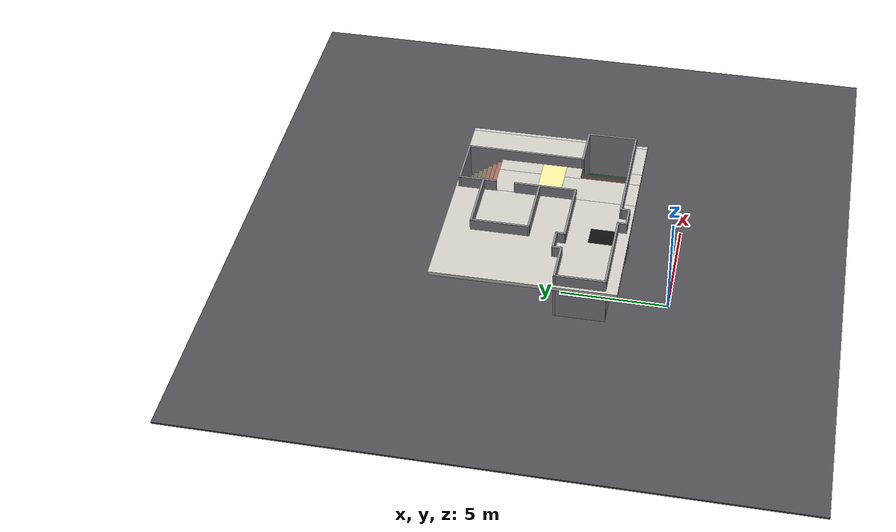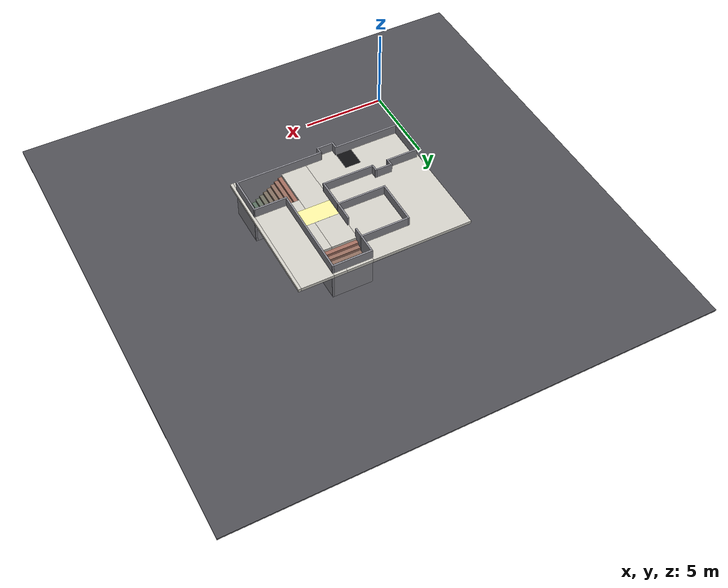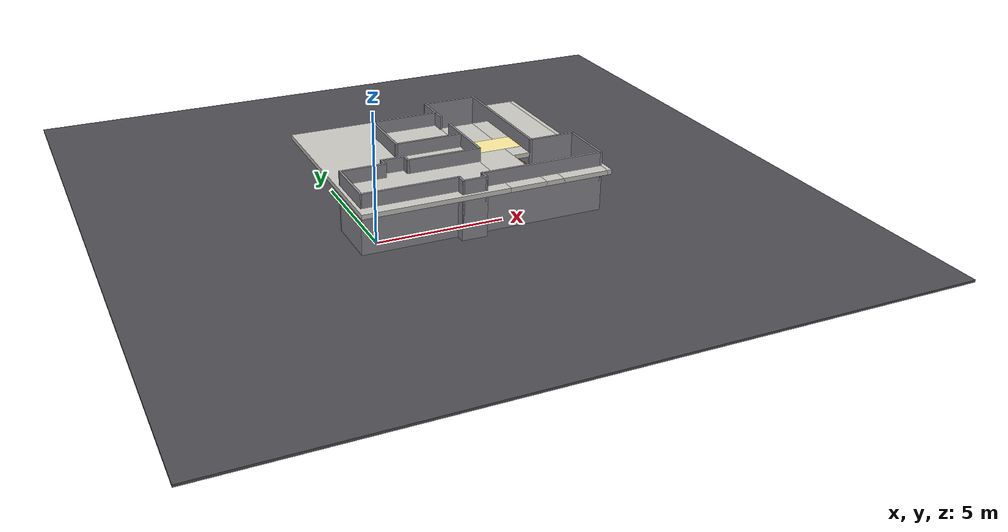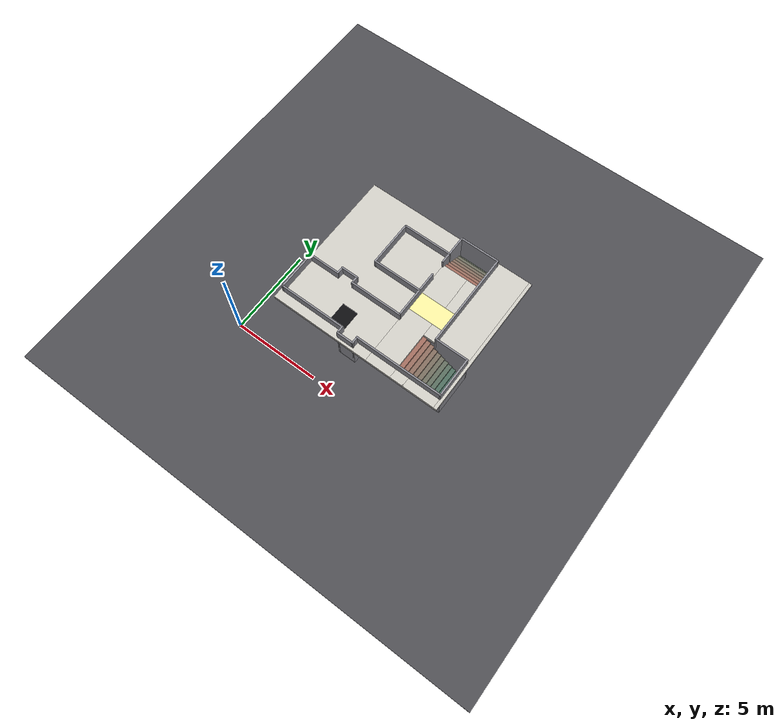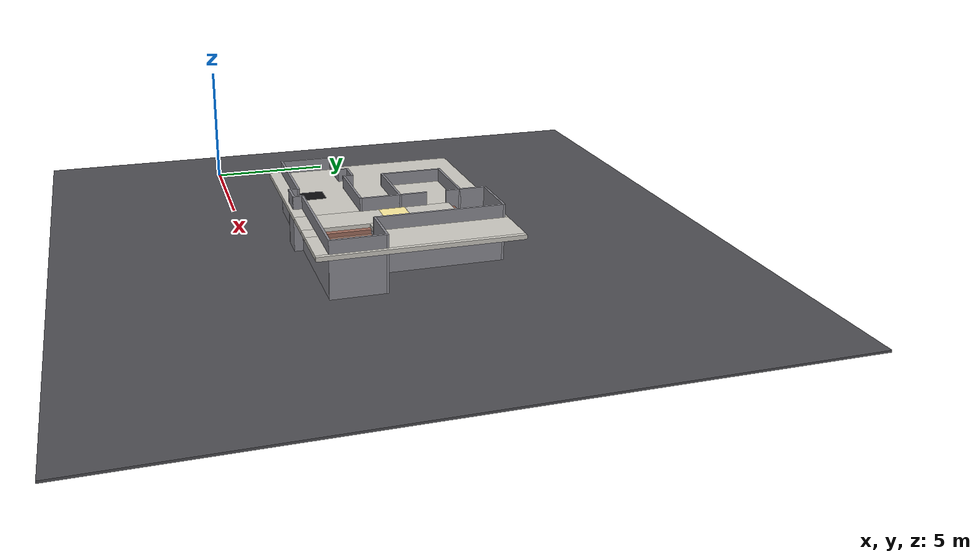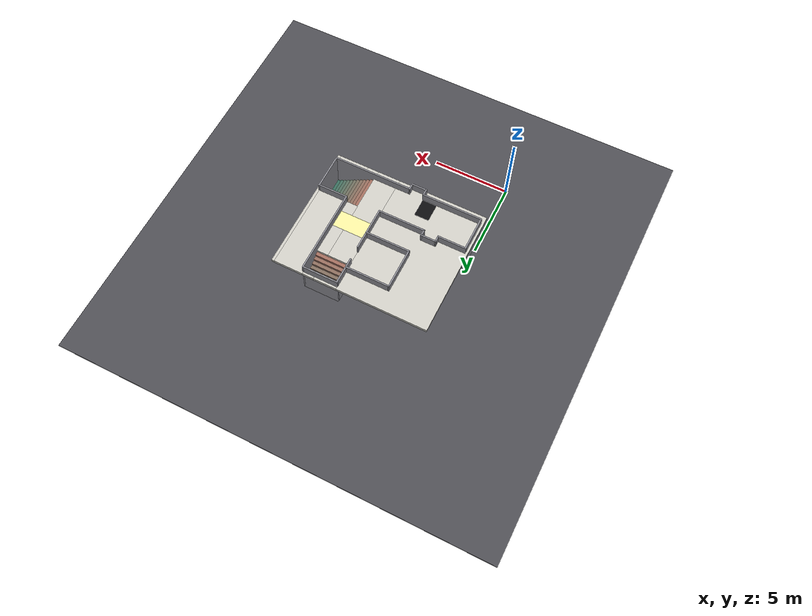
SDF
<?xml version="1.0"?>
<sdf version="1.6">
<world name="city_hall">
  <physics type="ode"><max_step_size>0.002</max_step_size><real_time_update_rate>500</real_time_update_rate>
    <real_time_factor>1</real_time_factor></physics>
  <scene><ambient>0.45 0.45 0.45 1</ambient><background>0.75 0.78 0.82 1</background><shadows>false</shadows></scene>
  <gui><camera name="user_camera"><pose>5.75 0.8 13.5 0 1.12 1.5708</pose></camera></gui>
  <light name="sun" type="directional"><cast_shadows>false</cast_shadows><pose>0 0 20 0 0 0</pose>
    <diffuse>0.85 0.85 0.85 1</diffuse><specular>0.1 0.1 0.1 1</specular><direction>-0.3 0.2 -1</direction></light>
  <model name="lower_floor"><static>true</static><pose>5.75 6.9 -2.05 0 0 0</pose>
    <link name="l"><collision name="c"><geometry><box><size>30 30 0.1</size></box></geometry></collision>
      <visual name="v"><geometry><box><size>30 30 0.1</size></box></geometry>
        <material><ambient>0.3 0.3 0.32 1</ambient><diffuse>0.3 0.3 0.32 1</diffuse></material></visual></link></model>
  <model name="city_hall"><static>true</static><link name="wall0"><pose>0.5000 4.2000 -0.7000 0 0 -1.57080</pose><collision name="c"><geometry><box><size>2.5000 0.1000 2.6000</size></box></geometry></collision><visual name="v"><geometry><box><size>2.5000 0.1000 2.6000</size></box></geometry><material><ambient>0.55 0.55 0.58 1</ambient><diffuse>0.55 0.55 0.58 1</diffuse><specular>0.05 0.05 0.05 1</specular></material></visual></link><link name="wall1"><pose>2.5500 3.0000 -0.7000 0 0 0.00000</pose><collision name="c"><geometry><box><size>4.2000 0.1000 2.6000</size></box></geometry></collision><visual name="v"><geometry><box><size>4.2000 0.1000 2.6000</size></box></geometry><material><ambient>0.55 0.55 0.58 1</ambient><diffuse>0.55 0.55 0.58 1</diffuse><specular>0.05 0.05 0.05 1</specular></material></visual></link><link name="wall2"><pose>4.6000 2.8000 -0.7000 0 0 -1.57080</pose><collision name="c"><geometry><box><size>0.5000 0.1000 2.6000</size></box></geometry></collision><visual name="v"><geometry><box><size>0.5000 0.1000 2.6000</size></box></geometry><material><ambient>0.55 0.55 0.58 1</ambient><diffuse>0.55 0.55 0.58 1</diffuse><specular>0.05 0.05 0.05 1</specular></material></visual></link><link name="wall3"><pose>5.1000 2.6000 -0.7000 0 0 0.00000</pose><collision name="c"><geometry><box><size>1.1000 0.1000 2.6000</size></box></geometry></collision><visual name="v"><geometry><box><size>1.1000 0.1000 2.6000</size></box></geometry><material><ambient>0.55 0.55 0.58 1</ambient><diffuse>0.55 0.55 0.58 1</diffuse><specular>0.05 0.05 0.05 1</specular></material></visual></link><link name="wall4"><pose>5.6000 2.8000 -0.7000 0 0 1.57080</pose><collision name="c"><geometry><box><size>0.5000 0.1000 2.6000</size></box></geometry></collision><visual name="v"><geometry><box><size>0.5000 0.1000 2.6000</size></box></geometry><material><ambient>0.55 0.55 0.58 1</ambient><diffuse>0.55 0.55 0.58 1</diffuse><specular>0.05 0.05 0.05 1</specular></material></visual></link><link name="wall5"><pose>8.3000 3.0000 -0.7000 0 0 0.00000</pose><collision name="c"><geometry><box><size>5.5000 0.1000 2.6000</size></box></geometry></collision><visual name="v"><geometry><box><size>5.5000 0.1000 2.6000</size></box></geometry><material><ambient>0.55 0.55 0.58 1</ambient><diffuse>0.55 0.55 0.58 1</diffuse><specular>0.05 0.05 0.05 1</specular></material></visual></link><link name="wall6"><pose>11.0000 4.2000 -0.7000 0 0 1.57080</pose><collision name="c"><geometry><box><size>2.5000 0.1000 2.6000</size></box></geometry></collision><visual name="v"><geometry><box><size>2.5000 0.1000 2.6000</size></box></geometry><material><ambient>0.55 0.55 0.58 1</ambient><diffuse>0.55 0.55 0.58 1</diffuse><specular>0.05 0.05 0.05 1</specular></material></visual></link><link name="wall7"><pose>10.0000 5.4000 -0.7000 0 0 3.14159</pose><collision name="c"><geometry><box><size>2.1000 0.1000 2.6000</size></box></geometry></collision><visual name="v"><geometry><box><size>2.1000 0.1000 2.6000</size></box></geometry><material><ambient>0.55 0.55 0.58 1</ambient><diffuse>0.55 0.55 0.58 1</diffuse><specular>0.05 0.05 0.05 1</specular></material></visual></link><link name="wall8"><pose>9.0000 8.3000 -0.7000 0 0 1.57080</pose><collision name="c"><geometry><box><size>5.9000 0.1000 2.6000</size></box></geometry></collision><visual name="v"><geometry><box><size>5.9000 0.1000 2.6000</size></box></geometry><material><ambient>0.55 0.55 0.58 1</ambient><diffuse>0.55 0.55 0.58 1</diffuse><specular>0.05 0.05 0.05 1</specular></material></visual></link><link name="wall9"><pose>7.8000 11.2000 -0.7000 0 0 3.14159</pose><collision name="c"><geometry><box><size>2.5000 0.1000 2.6000</size></box></geometry></collision><visual name="v"><geometry><box><size>2.5000 0.1000 2.6000</size></box></geometry><material><ambient>0.55 0.55 0.58 1</ambient><diffuse>0.55 0.55 0.58 1</diffuse><specular>0.05 0.05 0.05 1</specular></material></visual></link><link name="wall10"><pose>6.6000 10.3000 -0.7000 0 0 -1.57080</pose><collision name="c"><geometry><box><size>1.9000 0.1000 2.6000</size></box></geometry></collision><visual name="v"><geometry><box><size>1.9000 0.1000 2.6000</size></box></geometry><material><ambient>0.55 0.55 0.58 1</ambient><diffuse>0.55 0.55 0.58 1</diffuse><specular>0.05 0.05 0.05 1</specular></material></visual></link><link name="wall11"><pose>6.6000 6.9000 -0.7000 0 0 -1.57080</pose><collision name="c"><geometry><box><size>3.1000 0.1000 2.6000</size></box></geometry></collision><visual name="v"><geometry><box><size>3.1000 0.1000 2.6000</size></box></geometry><material><ambient>0.55 0.55 0.58 1</ambient><diffuse>0.55 0.55 0.58 1</diffuse><specular>0.05 0.05 0.05 1</specular></material></visual></link><link name="wall12"><pose>5.0000 5.4000 -0.7000 0 0 3.14159</pose><collision name="c"><geometry><box><size>3.3000 0.1000 2.6000</size></box></geometry></collision><visual name="v"><geometry><box><size>3.3000 0.1000 2.6000</size></box></geometry><material><ambient>0.55 0.55 0.58 1</ambient><diffuse>0.55 0.55 0.58 1</diffuse><specular>0.05 0.05 0.05 1</specular></material></visual></link><link name="wall13"><pose>3.4000 5.6000 -0.7000 0 0 1.57080</pose><collision name="c"><geometry><box><size>0.5000 0.1000 2.6000</size></box></geometry></collision><visual name="v"><geometry><box><size>0.5000 0.1000 2.6000</size></box></geometry><material><ambient>0.55 0.55 0.58 1</ambient><diffuse>0.55 0.55 0.58 1</diffuse><specular>0.05 0.05 0.05 1</specular></material></visual></link><link name="wall14"><pose>2.9000 5.8000 -0.7000 0 0 3.14159</pose><collision name="c"><geometry><box><size>1.1000 0.1000 2.6000</size></box></geometry></collision><visual name="v"><geometry><box><size>1.1000 0.1000 2.6000</size></box></geometry><material><ambient>0.55 0.55 0.58 1</ambient><diffuse>0.55 0.55 0.58 1</diffuse><specular>0.05 0.05 0.05 1</specular></material></visual></link><link name="wall15"><pose>2.4000 5.6000 -0.7000 0 0 -1.57080</pose><collision name="c"><geometry><box><size>0.5000 0.1000 2.6000</size></box></geometry></collision><visual name="v"><geometry><box><size>0.5000 0.1000 2.6000</size></box></geometry><material><ambient>0.55 0.55 0.58 1</ambient><diffuse>0.55 0.55 0.58 1</diffuse><specular>0.05 0.05 0.05 1</specular></material></visual></link><link name="wall16"><pose>1.4500 5.4000 -0.7000 0 0 3.14159</pose><collision name="c"><geometry><box><size>2.0000 0.1000 2.6000</size></box></geometry></collision><visual name="v"><geometry><box><size>2.0000 0.1000 2.6000</size></box></geometry><material><ambient>0.55 0.55 0.58 1</ambient><diffuse>0.55 0.55 0.58 1</diffuse><specular>0.05 0.05 0.05 1</specular></material></visual></link><link name="wall17"><pose>5.1000 7.2000 -0.7000 0 0 3.14159</pose><collision name="c"><geometry><box><size>3.1000 0.1000 2.6000</size></box></geometry></collision><visual name="v"><geometry><box><size>3.1000 0.1000 2.6000</size></box></geometry><material><ambient>0.55 0.55 0.58 1</ambient><diffuse>0.55 0.55 0.58 1</diffuse><specular>0.05 0.05 0.05 1</specular></material></visual></link><link name="wall18"><pose>3.6000 8.6000 -0.7000 0 0 1.57080</pose><collision name="c"><geometry><box><size>2.9000 0.1000 2.6000</size></box></geometry></collision><visual name="v"><geometry><box><size>2.9000 0.1000 2.6000</size></box></geometry><material><ambient>0.55 0.55 0.58 1</ambient><diffuse>0.55 0.55 0.58 1</diffuse><specular>0.05 0.05 0.05 1</specular></material></visual></link><link name="wall19"><pose>5.1000 10.0000 -0.7000 0 0 0.00000</pose><collision name="c"><geometry><box><size>3.1000 0.1000 2.6000</size></box></geometry></collision><visual name="v"><geometry><box><size>3.1000 0.1000 2.6000</size></box></geometry><material><ambient>0.55 0.55 0.58 1</ambient><diffuse>0.55 0.55 0.58 1</diffuse><specular>0.05 0.05 0.05 1</specular></material></visual></link><link name="slab0"><pose>3.4500 6.9000 -0.1000 0 0 0.00000</pose><collision name="c"><geometry><box><size>6.3000 9.0000 0.2000</size></box></geometry></collision><visual name="v"><geometry><box><size>6.3000 9.0000 0.2000</size></box></geometry><material><ambient>0.8 0.79 0.76 1</ambient><diffuse>0.8 0.79 0.76 1</diffuse><specular>0.05 0.05 0.05 1</specular></material></visual></link><link name="slab1"><pose>7.3900 5.9500 -0.1000 0 0 0.00000</pose><collision name="c"><geometry><box><size>1.6200 7.1000 0.2000</size></box></geometry></collision><visual name="v"><geometry><box><size>1.6200 7.1000 0.2000</size></box></geometry><material><ambient>0.8 0.79 0.76 1</ambient><diffuse>0.8 0.79 0.76 1</diffuse><specular>0.05 0.05 0.05 1</specular></material></visual></link><link name="slab2"><pose>7.4000 11.3000 -0.1000 0 0 0.00000</pose><collision name="c"><geometry><box><size>1.6400 0.2000 0.2000</size></box></geometry></collision><visual name="v"><geometry><box><size>1.6400 0.2000 0.2000</size></box></geometry><material><ambient>0.8 0.79 0.76 1</ambient><diffuse>0.8 0.79 0.76 1</diffuse><specular>0.05 0.05 0.05 1</specular></material></visual></link><link name="slab3"><pose>8.6000 2.7000 -0.1000 0 0 0.00000</pose><collision name="c"><geometry><box><size>0.8400 0.6000 0.2000</size></box></geometry></collision><visual name="v"><geometry><box><size>0.8400 0.6000 0.2000</size></box></geometry><material><ambient>0.8 0.79 0.76 1</ambient><diffuse>0.8 0.79 0.76 1</diffuse><specular>0.05 0.05 0.05 1</specular></material></visual></link><link name="slab4"><pose>8.6000 7.4500 -0.1000 0 0 0.00000</pose><collision name="c"><geometry><box><size>0.8400 4.1000 0.2000</size></box></geometry></collision><visual name="v"><geometry><box><size>0.8400 4.1000 0.2000</size></box></geometry><material><ambient>0.8 0.79 0.76 1</ambient><diffuse>0.8 0.79 0.76 1</diffuse><specular>0.05 0.05 0.05 1</specular></material></visual></link><link name="slab5"><pose>8.6000 11.3000 -0.1000 0 0 0.00000</pose><collision name="c"><geometry><box><size>0.8400 0.2000 0.2000</size></box></geometry></collision><visual name="v"><geometry><box><size>0.8400 0.2000 0.2000</size></box></geometry><material><ambient>0.8 0.79 0.76 1</ambient><diffuse>0.8 0.79 0.76 1</diffuse><specular>0.05 0.05 0.05 1</specular></material></visual></link><link name="slab6"><pose>10.0000 2.7000 -0.1000 0 0 0.00000</pose><collision name="c"><geometry><box><size>2.0400 0.6000 0.2000</size></box></geometry></collision><visual name="v"><geometry><box><size>2.0400 0.6000 0.2000</size></box></geometry><material><ambient>0.8 0.79 0.76 1</ambient><diffuse>0.8 0.79 0.76 1</diffuse><specular>0.05 0.05 0.05 1</specular></material></visual></link><link name="slab7"><pose>10.0100 8.4000 -0.1000 0 0 0.00000</pose><collision name="c"><geometry><box><size>2.0200 6.0000 0.2000</size></box></geometry></collision><visual name="v"><geometry><box><size>2.0200 6.0000 0.2000</size></box></geometry><material><ambient>0.8 0.79 0.76 1</ambient><diffuse>0.8 0.79 0.76 1</diffuse><specular>0.05 0.05 0.05 1</specular></material></visual></link><link name="slab8"><pose>11.1000 6.9000 -0.1000 0 0 0.00000</pose><collision name="c"><geometry><box><size>0.2000 9.0000 0.2000</size></box></geometry></collision><visual name="v"><geometry><box><size>0.2000 9.0000 0.2000</size></box></geometry><material><ambient>0.8 0.79 0.76 1</ambient><diffuse>0.8 0.79 0.76 1</diffuse><specular>0.05 0.05 0.05 1</specular></material></visual></link><link name="stairA0"><pose>8.3250 4.2000 -1.0900 0 0 0.00000</pose><collision name="c"><geometry><box><size>0.2500 2.4000 1.8200</size></box></geometry></collision><visual name="v"><geometry><box><size>0.2500 2.4000 1.8200</size></box></geometry><material><ambient>0.62 0.42 0.36 1</ambient><diffuse>0.62 0.42 0.36 1</diffuse><specular>0.05 0.05 0.05 1</specular></material></visual></link><link name="stairA1"><pose>8.5750 4.2000 -1.1800 0 0 0.00000</pose><collision name="c"><geometry><box><size>0.2500 2.4000 1.6400</size></box></geometry></collision><visual name="v"><geometry><box><size>0.2500 2.4000 1.6400</size></box></geometry><material><ambient>0.58 0.42 0.36 1</ambient><diffuse>0.58 0.42 0.36 1</diffuse><specular>0.05 0.05 0.05 1</specular></material></visual></link><link name="stairA2"><pose>8.8250 4.2000 -1.2700 0 0 0.00000</pose><collision name="c"><geometry><box><size>0.2500 2.4000 1.4600</size></box></geometry></collision><visual name="v"><geometry><box><size>0.2500 2.4000 1.4600</size></box></geometry><material><ambient>0.54 0.42 0.36 1</ambient><diffuse>0.54 0.42 0.36 1</diffuse><specular>0.05 0.05 0.05 1</specular></material></visual></link><link name="stairA3"><pose>9.0750 4.2000 -1.3600 0 0 0.00000</pose><collision name="c"><geometry><box><size>0.2500 2.4000 1.2800</size></box></geometry></collision><visual name="v"><geometry><box><size>0.2500 2.4000 1.2800</size></box></geometry><material><ambient>0.5 0.42 0.36 1</ambient><diffuse>0.5 0.42 0.36 1</diffuse><specular>0.05 0.05 0.05 1</specular></material></visual></link><link name="stairA4"><pose>9.3250 4.2000 -1.4500 0 0 0.00000</pose><collision name="c"><geometry><box><size>0.2500 2.4000 1.1000</size></box></geometry></collision><visual name="v"><geometry><box><size>0.2500 2.4000 1.1000</size></box></geometry><material><ambient>0.45999999999999996 0.42 0.36 1</ambient><diffuse>0.45999999999999996 0.42 0.36 1</diffuse><specular>0.05 0.05 0.05 1</specular></material></visual></link><link name="stairA5"><pose>9.5750 4.2000 -1.5400 0 0 0.00000</pose><collision name="c"><geometry><box><size>0.2500 2.4000 0.9200</size></box></geometry></collision><visual name="v"><geometry><box><size>0.2500 2.4000 0.9200</size></box></geometry><material><ambient>0.42 0.42 0.36 1</ambient><diffuse>0.42 0.42 0.36 1</diffuse><specular>0.05 0.05 0.05 1</specular></material></visual></link><link name="stairA6"><pose>9.8250 4.2000 -1.6300 0 0 0.00000</pose><collision name="c"><geometry><box><size>0.2500 2.4000 0.7400</size></box></geometry></collision><visual name="v"><geometry><box><size>0.2500 2.4000 0.7400</size></box></geometry><material><ambient>0.38 0.42 0.36 1</ambient><diffuse>0.38 0.42 0.36 1</diffuse><specular>0.05 0.05 0.05 1</specular></material></visual></link><link name="stairA7"><pose>10.0750 4.2000 -1.7200 0 0 0.00000</pose><collision name="c"><geometry><box><size>0.2500 2.4000 0.5600</size></box></geometry></collision><visual name="v"><geometry><box><size>0.2500 2.4000 0.5600</size></box></geometry><material><ambient>0.33999999999999997 0.42 0.36 1</ambient><diffuse>0.33999999999999997 0.42 0.36 1</diffuse><specular>0.05 0.05 0.05 1</specular></material></visual></link><link name="stairA8"><pose>10.3250 4.2000 -1.8100 0 0 0.00000</pose><collision name="c"><geometry><box><size>0.2500 2.4000 0.3800</size></box></geometry></collision><visual name="v"><geometry><box><size>0.2500 2.4000 0.3800</size></box></geometry><material><ambient>0.3 0.42 0.36 1</ambient><diffuse>0.3 0.42 0.36 1</diffuse><specular>0.05 0.05 0.05 1</specular></material></visual></link><link name="stairA9"><pose>10.5750 4.2000 -1.9000 0 0 0.00000</pose><collision name="c"><geometry><box><size>0.2500 2.4000 0.2000</size></box></geometry></collision><visual name="v"><geometry><box><size>0.2500 2.4000 0.2000</size></box></geometry><material><ambient>0.26 0.42 0.36 1</ambient><diffuse>0.26 0.42 0.36 1</diffuse><specular>0.05 0.05 0.05 1</specular></material></visual></link><link name="stairA10"><pose>10.8250 4.2000 -1.9900 0 0 0.00000</pose><collision name="c"><geometry><box><size>0.2500 2.4000 0.0200</size></box></geometry></collision><visual name="v"><geometry><box><size>0.2500 2.4000 0.0200</size></box></geometry><material><ambient>0.21999999999999997 0.42 0.36 1</ambient><diffuse>0.21999999999999997 0.42 0.36 1</diffuse><specular>0.05 0.05 0.05 1</specular></material></visual></link><link name="stairA11"><pose>10.9750 4.2000 -2.0800 0 0 0.00000</pose><collision name="c"><geometry><box><size>0.0500 2.4000 -0.1600</size></box></geometry></collision><visual name="v"><geometry><box><size>0.0500 2.4000 -0.1600</size></box></geometry><material><ambient>0.18 0.42 0.36 1</ambient><diffuse>0.18 0.42 0.36 1</diffuse><specular>0.05 0.05 0.05 1</specular></material></visual></link><link name="stairB0"><pose>7.8000 9.6250 -1.0900 0 0 0.00000</pose><collision name="c"><geometry><box><size>2.4000 0.2500 1.8200</size></box></geometry></collision><visual name="v"><geometry><box><size>2.4000 0.2500 1.8200</size></box></geometry><material><ambient>0.62 0.42 0.36 1</ambient><diffuse>0.62 0.42 0.36 1</diffuse><specular>0.05 0.05 0.05 1</specular></material></visual></link><link name="stairB1"><pose>7.8000 9.8750 -1.1800 0 0 0.00000</pose><collision name="c"><geometry><box><size>2.4000 0.2500 1.6400</size></box></geometry></collision><visual name="v"><geometry><box><size>2.4000 0.2500 1.6400</size></box></geometry><material><ambient>0.58 0.42 0.36 1</ambient><diffuse>0.58 0.42 0.36 1</diffuse><specular>0.05 0.05 0.05 1</specular></material></visual></link><link name="stairB2"><pose>7.8000 10.1250 -1.2700 0 0 0.00000</pose><collision name="c"><geometry><box><size>2.4000 0.2500 1.4600</size></box></geometry></collision><visual name="v"><geometry><box><size>2.4000 0.2500 1.4600</size></box></geometry><material><ambient>0.54 0.42 0.36 1</ambient><diffuse>0.54 0.42 0.36 1</diffuse><specular>0.05 0.05 0.05 1</specular></material></visual></link><link name="stairB3"><pose>7.8000 10.3750 -1.3600 0 0 0.00000</pose><collision name="c"><geometry><box><size>2.4000 0.2500 1.2800</size></box></geometry></collision><visual name="v"><geometry><box><size>2.4000 0.2500 1.2800</size></box></geometry><material><ambient>0.5 0.42 0.36 1</ambient><diffuse>0.5 0.42 0.36 1</diffuse><specular>0.05 0.05 0.05 1</specular></material></visual></link><link name="stairB4"><pose>7.8000 10.6250 -1.4500 0 0 0.00000</pose><collision name="c"><geometry><box><size>2.4000 0.2500 1.1000</size></box></geometry></collision><visual name="v"><geometry><box><size>2.4000 0.2500 1.1000</size></box></geometry><material><ambient>0.45999999999999996 0.42 0.36 1</ambient><diffuse>0.45999999999999996 0.42 0.36 1</diffuse><specular>0.05 0.05 0.05 1</specular></material></visual></link><link name="stairB5"><pose>7.8000 10.8750 -1.5400 0 0 0.00000</pose><collision name="c"><geometry><box><size>2.4000 0.2500 0.9200</size></box></geometry></collision><visual name="v"><geometry><box><size>2.4000 0.2500 0.9200</size></box></geometry><material><ambient>0.42 0.42 0.36 1</ambient><diffuse>0.42 0.42 0.36 1</diffuse><specular>0.05 0.05 0.05 1</specular></material></visual></link><link name="stairB6"><pose>7.8000 11.1000 -1.6300 0 0 0.00000</pose><collision name="c"><geometry><box><size>2.4000 0.2000 0.7400</size></box></geometry></collision><visual name="v"><geometry><box><size>2.4000 0.2000 0.7400</size></box></geometry><material><ambient>0.38 0.42 0.36 1</ambient><diffuse>0.38 0.42 0.36 1</diffuse><specular>0.05 0.05 0.05 1</specular></material></visual></link><link name="dark_mat"><pose>4.1000 3.6500 0.0005 0 0 0.00000</pose><visual name="v"><geometry><box><size>1.0000 1.3000 0.0010</size></box></geometry><material><ambient>0.05 0.05 0.06 1</ambient><diffuse>0.05 0.05 0.06 1</diffuse><specular>0.05 0.05 0.05 1</specular></material></visual></link><link name="sun_patch"><pose>7.8000 6.8000 0.0005 0 0 0.00000</pose><visual name="v"><geometry><box><size>2.4000 1.2000 0.0010</size></box></geometry><material><ambient>1.0 0.93 0.62 1</ambient><diffuse>1.0 0.93 0.62 1</diffuse><specular>0.05 0.05 0.05 1</specular></material></visual></link></model>
  <model name="overhead_cam"><static>true</static>
  <link name="link"><pose>5.75 6.9 24.0 0 1.570796 1.570796</pose>
    <sensor name="overhead" type="camera"><update_rate>4</update_rate><always_on>true</always_on>
      <camera><horizontal_fov>0.4703019394178876</horizontal_fov>
        <image><width>720</width><height>600</height><format>R8G8B8</format></image>
        <clip><near>1.0</near><far>40</far></clip></camera>
      <plugin name="overhead_cam" filename="libgazebo_ros_camera.so">
        <ros><namespace>/overhead</namespace></ros><camera_name>overhead</camera_name><frame_name>overhead</frame_name>
      </plugin>
    </sensor>
  </link></model>
  <plugin name="gazebo_ros_state" filename="libgazebo_ros_state.so">
    <ros><namespace>/</namespace></ros><update_rate>20.0</update_rate>
  </plugin>
</world>
</sdf>
